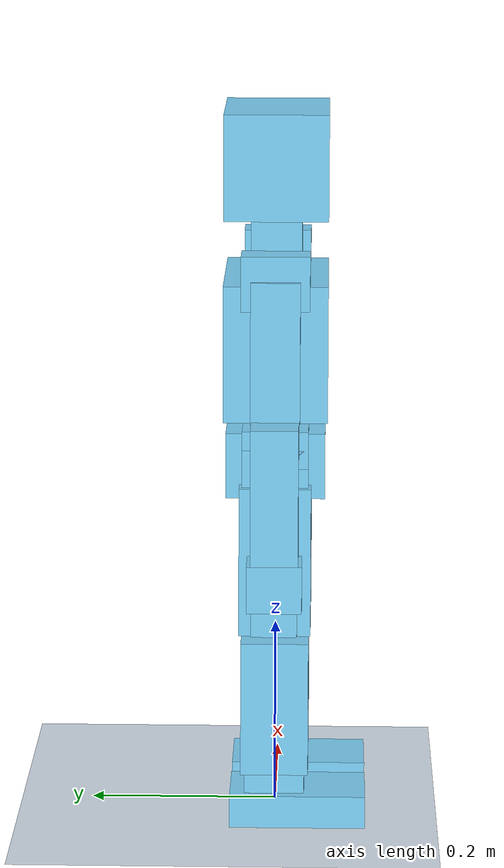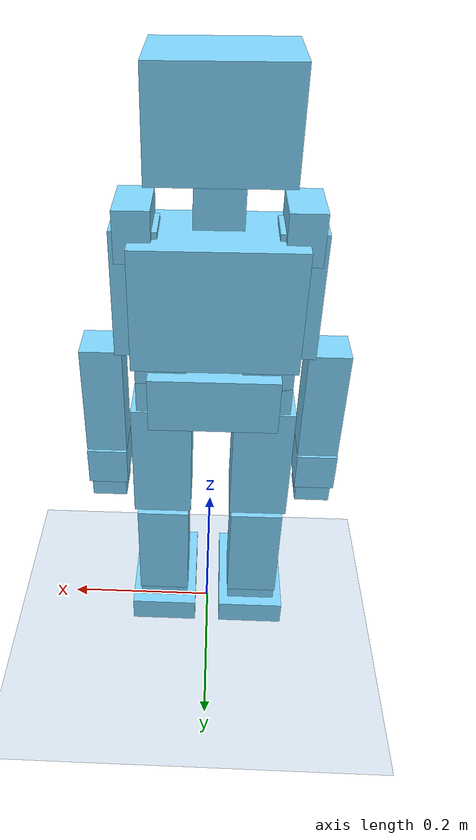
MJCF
<mujoco model="hr30_hip4_control_successor_p01">
  <compiler angle="radian" coordinate="local" />
  <option gravity="0 0 -9.80665" timestep="0.002000" integrator="implicitfast" solver="Newton" iterations="100" tolerance="1e-10" />
  <default>
    <joint damping="0.1" armature="0.01" limited="true" />
    <geom type="box" density="0" rgba="0.49 0.83 0.98 1" contype="1" conaffinity="1" />
  </default>
  <worldbody>
    <geom name="floor" type="plane" size="2 2 0.02" rgba="0.85 0.90 0.95 1" />
    <body name="base_link" pos="0.000000 0.000000 0.390000">
      <freejoint name="floating_base" />
      <inertial pos="-0.003051 0.007384 -0.000262" mass="1.550063" diaginertia="0.002057063 0.003736298 0.004527477" />
      <geom name="G_base_link" pos="0.000000 0.000000 0.000000" size="0.077500 0.052500 0.035000" />
      <body name="torso" pos="0.000000 0.000000 0.035000">
        <joint name="WAIST_YAW" type="hinge" axis="0 0 1" range="-0.520000 0.520000" />
        <inertial pos="-0.000527 0.007026 0.093925" mass="0.987371" diaginertia="0.002725557 0.004700300 0.003965942" />
        <geom name="G_torso" pos="0.000000 0.000000 0.087500" size="0.095000 0.055000 0.072500" />
        <body name="neck_pan_link" pos="0.000000 0.000000 0.225000">
          <joint name="HEAD_PAN" type="hinge" axis="0 0 1" range="-1.400000 1.400000" />
          <inertial pos="-0.001315 -0.000001 -0.022743" mass="0.121151" diaginertia="0.000063402 0.000063402 0.000058879" />
          <geom name="G_neck_pan_link" pos="0.000000 0.000000 -0.025000" size="0.027000 0.027000 0.029000" />
          <body name="head" pos="0.000000 0.000000 0.040000">
            <joint name="HEAD_TILT" type="hinge" axis="1 0 0" range="-0.520000 0.520000" />
            <inertial pos="-0.001989 -0.012142 0.007920" mass="0.418231" diaginertia="0.000858907 0.001221374 0.001205900" />
            <geom name="G_head" pos="0.000000 0.000000 0.016000" size="0.075000 0.055000 0.056000" />
          </body>
        </body>
        <body name="L_shoulder_pitch_link" pos="0.090000 0.000000 0.165000">
          <joint name="L_SHOULDER_PITCH" type="hinge" axis="1 0 0" range="-1.570000 1.570000" />
          <inertial pos="0.000168 0.020509 -0.004978" mass="0.191441" diaginertia="0.000136370 0.000079193 0.000108228" />
          <geom name="G_L_shoulder_pitch_link" pos="0.000000 0.000000 0.000000" size="0.020000 0.036000 0.029000" />
          <body name="L_upper_arm" pos="0.000000 0.000000 0.000000">
            <joint name="L_SHOULDER_ROLL" type="hinge" axis="0 1 0" range="-1.220000 1.220000" />
            <inertial pos="0.010907 0.000106 -0.059312" mass="0.303473" diaginertia="0.000637395 0.000637395 0.000136765" />
            <geom name="G_L_upper_arm" pos="0.000000 0.000000 -0.072553" size="0.026000 0.026000 0.075000" />
            <body name="L_forearm" pos="0.038000 0.000000 -0.145107">
              <joint name="L_ELBOW_PITCH" type="hinge" axis="1 0 0" range="0.000000 2.200000" />
              <inertial pos="-0.019395 0.000000 -0.029626" mass="0.195138" diaginertia="0.000382552 0.000382552 0.000081308" />
              <geom name="G_L_forearm" pos="0.005000 0.000000 -0.072457" size="0.025000 0.025000 0.072500" />
              <body name="L_hand" pos="0.005000 0.000000 -0.144914">
                <joint name="L_WRIST_ROTATION" type="hinge" axis="0 0 1" range="-1.570000 1.570000" />
                <inertial pos="-0.000530 -0.001402 -0.022961" mass="0.172070" diaginertia="0.000084085 0.000071696 0.000084085" />
                <geom name="G_L_hand" pos="0.000000 0.000000 -0.025000" size="0.025000 0.029000 0.025000" />
                <body name="L_gripper" pos="0.000000 0.000000 -0.043000">
                  <joint name="L_GRIPPER" type="slide" axis="1.0 0 0" range="0.000000 0.026000" stiffness="100" springref="0.010" damping="5" />
                  <inertial pos="0.004237 -0.004392 0.010841" mass="0.040804" diaginertia="0.000015030 0.000013778 0.000014417" />
                  <geom name="G_L_gripper" pos="0.000000 0.000000 -0.010000" size="0.022000 0.024000 0.023000" />
                </body>
              </body>
            </body>
          </body>
        </body>
        <body name="R_shoulder_pitch_link" pos="-0.090000 0.000000 0.165000">
          <joint name="R_SHOULDER_PITCH" type="hinge" axis="1 0 0" range="-1.570000 1.570000" />
          <inertial pos="0.000168 0.020509 -0.004978" mass="0.191441" diaginertia="0.000136370 0.000079193 0.000108228" />
          <geom name="G_R_shoulder_pitch_link" pos="0.000000 0.000000 0.000000" size="0.020000 0.036000 0.029000" />
          <body name="R_upper_arm" pos="0.000000 0.000000 0.000000">
            <joint name="R_SHOULDER_ROLL" type="hinge" axis="0 1 0" range="-1.220000 1.220000" />
            <inertial pos="-0.009328 0.000106 -0.059312" mass="0.303473" diaginertia="0.000637395 0.000637395 0.000136765" />
            <geom name="G_R_upper_arm" pos="0.000000 0.000000 -0.072553" size="0.026000 0.026000 0.075000" />
            <body name="R_forearm" pos="-0.038000 0.000000 -0.145107">
              <joint name="R_ELBOW_PITCH" type="hinge" axis="1 0 0" range="0.000000 2.200000" />
              <inertial pos="0.025992 0.000000 -0.029626" mass="0.195138" diaginertia="0.000382552 0.000382552 0.000081308" />
              <geom name="G_R_forearm" pos="-0.005000 0.000000 -0.072457" size="0.025000 0.025000 0.072500" />
              <body name="R_hand" pos="-0.005000 0.000000 -0.144914">
                <joint name="R_WRIST_ROTATION" type="hinge" axis="0 0 1" range="-1.570000 1.570000" />
                <inertial pos="-0.001321 -0.001402 -0.022961" mass="0.172070" diaginertia="0.000084085 0.000071696 0.000084085" />
                <geom name="G_R_hand" pos="0.000000 0.000000 -0.025000" size="0.025000 0.029000 0.025000" />
                <body name="R_gripper" pos="0.000000 0.000000 -0.043000">
                  <joint name="R_GRIPPER" type="slide" axis="-1.0 0 0" range="0.000000 0.026000" stiffness="100" springref="0.010" damping="5" />
                  <inertial pos="-0.004241 -0.004392 0.010841" mass="0.040804" diaginertia="0.000015030 0.000013778 0.000014417" />
                  <geom name="G_R_gripper" pos="0.000000 0.000000 -0.010000" size="0.022000 0.024000 0.023000" />
                </body>
              </body>
            </body>
          </body>
        </body>
      </body>
      <body name="L_hip_yaw_link" pos="0.062500 0.000000 0.020000">
        <joint name="L_HIP_YAW" type="hinge" axis="0 0 1" range="-0.520000 0.520000" />
        <inertial pos="-0.009947 0.000000 -0.038038" mass="0.249282" diaginertia="0.000135028 0.000108022 0.000176574" />
        <geom name="G_L_hip_yaw_link" pos="0.000000 0.000000 0.000000" size="0.030000 0.035000 0.020000" />
        <body name="L_hip_roll_link" pos="0.000000 0.000000 -0.020000">
          <joint name="L_HIP_ROLL" type="hinge" axis="0 1 0" range="-0.440000 0.440000" />
          <inertial pos="0.000000 0.000327 -0.033295" mass="0.343564" diaginertia="0.000186097 0.000148878 0.000243358" />
          <geom name="G_L_hip_roll_link" pos="0.000000 0.000000 0.000000" size="0.030000 0.035000 0.020000" />
          <body name="L_thigh" pos="0.000000 0.000000 -0.020000">
            <joint name="L_HIP_PITCH" type="hinge" axis="1 0 0" range="-0.610000 0.790000" />
            <inertial pos="0.000167 0.001266 -0.054216" mass="0.675468" diaginertia="0.001766124 0.001749237 0.000633364" />
            <geom name="G_L_thigh" pos="0.000000 0.000000 -0.080000" size="0.037000 0.038000 0.080000" />
            <body name="L_shin" pos="0.000000 0.000000 -0.160000">
              <joint name="L_KNEE_PITCH" type="hinge" axis="1 0 0" range="0.000000 2.090000" />
              <inertial pos="0.000221 0.000000 -0.025652" mass="0.509954" diaginertia="0.001113783 0.001089985 0.000416803" />
              <geom name="G_L_shin" pos="0.000000 0.000000 -0.082000" size="0.034000 0.036000 0.072500" />
              <body name="L_ankle_pitch_link" pos="0.000000 0.000000 -0.155000">
                <joint name="L_ANKLE_PITCH" type="hinge" axis="1 0 0" range="-0.610000 0.520000" />
                <inertial pos="0.000124 0.000000 0.014886" mass="0.258987" diaginertia="0.000146759 0.000152371 0.000182413" />
                <geom name="G_L_ankle_pitch_link" pos="0.000000 0.000000 0.000000" size="0.033000 0.032000 0.026000" />
                <body name="L_foot" pos="0.000000 0.000000 -0.020000">
                  <joint name="L_ANKLE_ROLL" type="hinge" axis="0 1 0" range="-0.350000 0.350000" />
                  <inertial pos="0.000000 0.005559 -0.000471" mass="0.436839" diaginertia="0.000809973 0.000339460 0.001060245" />
                  <geom name="G_L_foot" pos="0.000000 -0.025000 -0.017500" size="0.045000 0.072500 0.017500" margin="0.001" />
                </body>
              </body>
            </body>
          </body>
        </body>
      </body>
      <body name="R_hip_yaw_link" pos="-0.062500 0.000000 0.020000">
        <joint name="R_HIP_YAW" type="hinge" axis="0 0 1" range="-0.520000 0.520000" />
        <inertial pos="-0.009947 0.000000 -0.038038" mass="0.249282" diaginertia="0.000135028 0.000108022 0.000176574" />
        <geom name="G_R_hip_yaw_link" pos="0.000000 0.000000 0.000000" size="0.030000 0.035000 0.020000" />
        <body name="R_hip_roll_link" pos="0.000000 0.000000 -0.020000">
          <joint name="R_HIP_ROLL" type="hinge" axis="0 1 0" range="-0.440000 0.440000" />
          <inertial pos="-0.000000 0.000327 -0.033295" mass="0.343564" diaginertia="0.000186097 0.000148878 0.000243358" />
          <geom name="G_R_hip_roll_link" pos="0.000000 0.000000 0.000000" size="0.030000 0.035000 0.020000" />
          <body name="R_thigh" pos="0.000000 0.000000 -0.020000">
            <joint name="R_HIP_PITCH" type="hinge" axis="1 0 0" range="-0.610000 0.790000" />
            <inertial pos="0.000167 0.001266 -0.054216" mass="0.675468" diaginertia="0.001766124 0.001749237 0.000633364" />
            <geom name="G_R_thigh" pos="0.000000 0.000000 -0.080000" size="0.037000 0.038000 0.080000" />
            <body name="R_shin" pos="0.000000 0.000000 -0.160000">
              <joint name="R_KNEE_PITCH" type="hinge" axis="1 0 0" range="0.000000 2.090000" />
              <inertial pos="0.000221 0.000000 -0.025652" mass="0.509954" diaginertia="0.001113783 0.001089985 0.000416803" />
              <geom name="G_R_shin" pos="0.000000 0.000000 -0.082000" size="0.034000 0.036000 0.072500" />
              <body name="R_ankle_pitch_link" pos="0.000000 0.000000 -0.155000">
                <joint name="R_ANKLE_PITCH" type="hinge" axis="1 0 0" range="-0.610000 0.520000" />
                <inertial pos="0.000124 0.000000 0.014886" mass="0.258987" diaginertia="0.000146759 0.000152371 0.000182413" />
                <geom name="G_R_ankle_pitch_link" pos="0.000000 0.000000 0.000000" size="0.033000 0.032000 0.026000" />
                <body name="R_foot" pos="0.000000 0.000000 -0.020000">
                  <joint name="R_ANKLE_ROLL" type="hinge" axis="0 1 0" range="-0.350000 0.350000" />
                  <inertial pos="-0.000000 0.005559 -0.000471" mass="0.436839" diaginertia="0.000809973 0.000339460 0.001060245" />
                  <geom name="G_R_foot" pos="0.000000 -0.025000 -0.017500" size="0.045000 0.072500 0.017500" margin="0.001" />
                </body>
              </body>
            </body>
          </body>
        </body>
      </body>
    </body>
    <body name="trajectory_fixture" mocap="true" pos="0 0 0.390000" />
  </worldbody>
  <contact>
    <exclude body1="L_ankle_pitch_link" body2="L_foot" />
    <exclude body1="L_ankle_pitch_link" body2="L_shin" />
    <exclude body1="L_foot" body2="L_shin" />
    <exclude body1="L_forearm" body2="L_hand" />
    <exclude body1="L_forearm" body2="L_upper_arm" />
    <exclude body1="L_gripper" body2="L_hand" />
    <exclude body1="L_hip_roll_link" body2="L_hip_yaw_link" />
    <exclude body1="L_hip_roll_link" body2="L_thigh" />
    <exclude body1="L_hip_roll_link" body2="base_link" />
    <exclude body1="L_hip_yaw_link" body2="L_thigh" />
    <exclude body1="L_hip_yaw_link" body2="base_link" />
    <exclude body1="L_shin" body2="L_thigh" />
    <exclude body1="L_shoulder_pitch_link" body2="L_upper_arm" />
    <exclude body1="L_shoulder_pitch_link" body2="torso" />
    <exclude body1="L_thigh" body2="base_link" />
    <exclude body1="L_upper_arm" body2="torso" />
    <exclude body1="R_ankle_pitch_link" body2="R_foot" />
    <exclude body1="R_ankle_pitch_link" body2="R_shin" />
    <exclude body1="R_foot" body2="R_shin" />
    <exclude body1="R_forearm" body2="R_hand" />
    <exclude body1="R_forearm" body2="R_upper_arm" />
    <exclude body1="R_gripper" body2="R_hand" />
    <exclude body1="R_hip_roll_link" body2="R_hip_yaw_link" />
    <exclude body1="R_hip_roll_link" body2="R_thigh" />
    <exclude body1="R_hip_roll_link" body2="base_link" />
    <exclude body1="R_hip_yaw_link" body2="R_thigh" />
    <exclude body1="R_hip_yaw_link" body2="base_link" />
    <exclude body1="R_shin" body2="R_thigh" />
    <exclude body1="R_shoulder_pitch_link" body2="R_upper_arm" />
    <exclude body1="R_shoulder_pitch_link" body2="torso" />
    <exclude body1="R_thigh" body2="base_link" />
    <exclude body1="R_upper_arm" body2="torso" />
    <exclude body1="base_link" body2="torso" />
    <exclude body1="head" body2="neck_pan_link" />
    <exclude body1="neck_pan_link" body2="torso" />
  </contact>
  <equality>
    <weld name="ideal_6dof_trajectory_fixture" body1="trajectory_fixture" body2="base_link" solref="0.01 1" solimp="0.90 0.95 0.001" />
  </equality>
  <actuator>
    <motor name="M_WAIST_YAW" joint="WAIST_YAW" ctrllimited="true" ctrlrange="-6.020342000 6.020342000" gear="1" />
    <motor name="M_HEAD_PAN" joint="HEAD_PAN" ctrllimited="true" ctrlrange="-0.795455000 0.795455000" gear="1" />
    <motor name="M_HEAD_TILT" joint="HEAD_TILT" ctrllimited="true" ctrlrange="-0.795455000 0.795455000" gear="1" />
    <motor name="M_L_SHOULDER_PITCH" joint="L_SHOULDER_PITCH" ctrllimited="true" ctrlrange="-4.542629000 4.542629000" gear="1" />
    <motor name="M_L_SHOULDER_ROLL" joint="L_SHOULDER_ROLL" ctrllimited="true" ctrlrange="-4.542629000 4.542629000" gear="1" />
    <motor name="M_L_ELBOW_PITCH" joint="L_ELBOW_PITCH" ctrllimited="true" ctrlrange="-3.562847000 3.562847000" gear="1" />
    <motor name="M_L_WRIST_ROTATION" joint="L_WRIST_ROTATION" ctrllimited="true" ctrlrange="-0.795455000 0.795455000" gear="1" />
    <motor name="M_L_GRIPPER" joint="L_GRIPPER" ctrllimited="true" ctrlrange="-1.000000000 1.000000000" gear="1" />
    <motor name="M_L_HIP_YAW" joint="L_HIP_YAW" ctrllimited="true" ctrlrange="-5.049020000 5.049020000" gear="1" />
    <motor name="M_L_HIP_ROLL" joint="L_HIP_ROLL" ctrllimited="true" ctrlrange="-17.166668000 17.166668000" gear="1" />
    <motor name="M_L_HIP_PITCH" joint="L_HIP_PITCH" ctrllimited="true" ctrlrange="-17.166669333 17.166669333" gear="1" />
    <motor name="M_L_KNEE_PITCH" joint="L_KNEE_PITCH" ctrllimited="true" ctrlrange="-10.729168000 10.729168000" gear="1" />
    <motor name="M_L_ANKLE_PITCH" joint="L_ANKLE_PITCH" ctrllimited="true" ctrlrange="-7.571049000 7.571049000" gear="1" />
    <motor name="M_L_ANKLE_ROLL" joint="L_ANKLE_ROLL" ctrllimited="true" ctrlrange="-6.056839000 6.056839000" gear="1" />
    <motor name="M_R_SHOULDER_PITCH" joint="R_SHOULDER_PITCH" ctrllimited="true" ctrlrange="-4.542629000 4.542629000" gear="1" />
    <motor name="M_R_SHOULDER_ROLL" joint="R_SHOULDER_ROLL" ctrllimited="true" ctrlrange="-4.542629000 4.542629000" gear="1" />
    <motor name="M_R_ELBOW_PITCH" joint="R_ELBOW_PITCH" ctrllimited="true" ctrlrange="-3.562847000 3.562847000" gear="1" />
    <motor name="M_R_WRIST_ROTATION" joint="R_WRIST_ROTATION" ctrllimited="true" ctrlrange="-0.795455000 0.795455000" gear="1" />
    <motor name="M_R_GRIPPER" joint="R_GRIPPER" ctrllimited="true" ctrlrange="-1.000000000 1.000000000" gear="1" />
    <motor name="M_R_HIP_YAW" joint="R_HIP_YAW" ctrllimited="true" ctrlrange="-5.049020000 5.049020000" gear="1" />
    <motor name="M_R_HIP_ROLL" joint="R_HIP_ROLL" ctrllimited="true" ctrlrange="-17.166668000 17.166668000" gear="1" />
    <motor name="M_R_HIP_PITCH" joint="R_HIP_PITCH" ctrllimited="true" ctrlrange="-17.166669333 17.166669333" gear="1" />
    <motor name="M_R_KNEE_PITCH" joint="R_KNEE_PITCH" ctrllimited="true" ctrlrange="-10.729168000 10.729168000" gear="1" />
    <motor name="M_R_ANKLE_PITCH" joint="R_ANKLE_PITCH" ctrllimited="true" ctrlrange="-7.571049000 7.571049000" gear="1" />
    <motor name="M_R_ANKLE_ROLL" joint="R_ANKLE_ROLL" ctrllimited="true" ctrlrange="-6.056839000 6.056839000" gear="1" />
  </actuator>
  <keyframe>
    <key name="WS-R01_00_P00_NEUTRAL_STAND" qpos="0.000000000 0.000000000 0.390000000 1.000000000 0.000000000 0.000000000 0.000000000 0.000000000 0.000000000 0.000000000 0.000000000 0.000000000 0.000000000 0.000000000 0.010000000 0.000000000 0.000000000 0.000000000 0.000000000 0.010000000 0.000000000 0.000000000 0.000000000 0.000000000 0.000000000 0.000000000 0.000000000 0.000000000 0.000000000 0.000000000 0.000000000 0.000000000" />
    <key name="WS-R01_01_P01_CROUCHED_STAND" qpos="0.000000000 0.000000000 0.386934442 1.000000000 0.000000000 0.000000000 0.000000000 0.000000000 0.000000000 0.000000000 0.000000000 0.000000000 0.000000000 0.000000000 0.010000000 0.000000000 0.000000000 0.000000000 0.000000000 0.010000000 0.000000000 0.000000000 -0.139626340 0.279252680 -0.139626340 0.000000000 0.000000000 0.000000000 -0.139626340 0.279252680 -0.139626340 0.000000000" />
    <key name="WS-R01_02_P02_LEFT_WEIGHT_TRANSFER" qpos="0.050000000 0.000000000 0.386100631 1.000000000 0.000000000 0.000000000 0.000000000 0.000000000 0.000000000 0.000000000 0.000000000 -0.209439510 0.000000000 0.000000000 0.010000000 0.000000000 0.209439510 0.000000000 0.000000000 0.010000000 0.000000000 0.148352986 0.000000000 0.000000000 0.000000000 -0.148352986 0.000000000 0.148352986 0.000000000 0.000000000 0.000000000 -0.148352986" />
    <key name="WS-R01_03_P03_RIGHT_FOOT_LIFT" qpos="0.050000000 0.000000000 0.386100631 1.000000000 0.000000000 0.000000000 0.000000000 0.000000000 0.000000000 0.000000000 0.000000000 -0.209439510 0.000000000 0.000000000 0.010000000 0.000000000 0.209439510 0.000000000 0.000000000 0.010000000 0.000000000 0.148352986 0.000000000 0.000000000 0.000000000 -0.148352986 0.000000000 0.148352986 -0.209439510 0.418879020 -0.209439510 -0.148352986" />
    <key name="WS-R01_04_P04_RIGHT_CAPTURE_STEP" qpos="0.050000000 0.000000000 0.386100631 1.000000000 0.000000000 0.000000000 0.000000000 0.000000000 0.000000000 0.000000000 -0.209439510 0.000000000 0.261799388 0.000000000 0.010000000 0.209439510 0.000000000 0.261799388 0.000000000 0.010000000 0.000000000 0.148352986 0.000000000 0.000000000 0.000000000 -0.148352986 0.000000000 0.148352986 -0.436332313 0.610865238 -0.174532925 -0.148352986" />
    <key name="WS-R01_05_P08_RIGHT_TOUCHDOWN" qpos="0.050000000 -0.020000000 0.385472053 1.000000000 0.000000000 0.000000000 0.000000000 0.000000000 0.000000000 0.000000000 -0.139626340 -0.209439510 0.000000000 0.000000000 0.010000000 0.139626340 0.209439510 0.000000000 0.000000000 0.010000000 0.000000000 0.148352986 0.063528850 0.000012287 -0.063541120 -0.148352986 0.000000000 0.148352986 -0.063538031 0.000006754 0.063531276 -0.148352986" />
    <key name="WS-L01_00_P00_NEUTRAL_STAND" qpos="0.000000000 0.000000000 0.390000000 1.000000000 0.000000000 0.000000000 0.000000000 0.000000000 0.000000000 0.000000000 0.000000000 0.000000000 0.000000000 0.000000000 0.010000000 0.000000000 0.000000000 0.000000000 0.000000000 0.010000000 0.000000000 0.000000000 0.000000000 0.000000000 0.000000000 0.000000000 0.000000000 0.000000000 0.000000000 0.000000000 0.000000000 0.000000000" />
    <key name="WS-L01_01_P01_CROUCHED_STAND" qpos="0.000000000 0.000000000 0.386934442 1.000000000 0.000000000 0.000000000 0.000000000 0.000000000 0.000000000 0.000000000 0.000000000 0.000000000 0.000000000 0.000000000 0.010000000 0.000000000 0.000000000 0.000000000 0.000000000 0.010000000 0.000000000 0.000000000 -0.139626340 0.279252680 -0.139626340 0.000000000 0.000000000 0.000000000 -0.139626340 0.279252680 -0.139626340 0.000000000" />
    <key name="WS-L01_02_P05_RIGHT_WEIGHT_TRANSFER" qpos="-0.050000000 0.000000000 0.386100631 1.000000000 0.000000000 0.000000000 0.000000000 0.000000000 0.000000000 0.000000000 0.000000000 -0.209439510 0.000000000 0.000000000 0.010000000 0.000000000 0.209439510 0.000000000 0.000000000 0.010000000 0.000000000 -0.148352986 0.000000000 0.000000000 0.000000000 0.148352986 0.000000000 -0.148352986 0.000000000 0.000000000 0.000000000 0.148352986" />
    <key name="WS-L01_03_P06_LEFT_FOOT_LIFT" qpos="-0.050000000 0.000000000 0.386100631 1.000000000 0.000000000 0.000000000 0.000000000 0.000000000 0.000000000 0.000000000 0.000000000 -0.209439510 0.000000000 0.000000000 0.010000000 0.000000000 0.209439510 0.000000000 0.000000000 0.010000000 0.000000000 -0.148352986 -0.209439510 0.418879020 -0.209439510 0.148352986 0.000000000 -0.148352986 0.000000000 0.000000000 0.000000000 0.148352986" />
    <key name="WS-L01_04_P07_LEFT_CAPTURE_STEP" qpos="-0.050000000 0.000000000 0.386100631 1.000000000 0.000000000 0.000000000 0.000000000 0.000000000 0.000000000 0.000000000 0.209439510 0.000000000 0.261799388 0.000000000 0.010000000 -0.209439510 0.000000000 0.261799388 0.000000000 0.010000000 0.000000000 -0.148352986 -0.436332313 0.610865238 -0.174532925 0.148352986 0.000000000 -0.148352986 0.000000000 0.000000000 0.000000000 0.148352986" />
    <key name="WS-L01_05_P09_LEFT_TOUCHDOWN" qpos="-0.050000000 -0.020000000 0.385472053 1.000000000 0.000000000 0.000000000 0.000000000 0.000000000 0.000000000 0.000000000 0.139626340 -0.209439510 0.000000000 0.000000000 0.010000000 -0.139626340 0.209439510 0.000000000 0.000000000 0.010000000 0.000000000 -0.148352986 -0.063538031 0.000006754 0.063531276 0.148352986 0.000000000 -0.148352986 0.063528850 0.000012287 -0.063541120 0.148352986" />
  </keyframe>
  <custom>
    <text name="successor_boundary" data="4:1 hip pitch and hip roll sizing scenario; transmission inertia/backlash/efficiency dynamics not modeled" />
    <text name="baseline_cap_hash" data="4b0919db805829612f32254798fc15cb1bfec58dc16111a43e1705f187989ca4" />
    <text name="control_successor" data="inverse feedforward plus kp_factor=8.0 kd_factor=0.8" />
    <text name="authority_boundary" data="numerical candidate only; no physical motion or walking authority" />
  </custom>
</mujoco>
